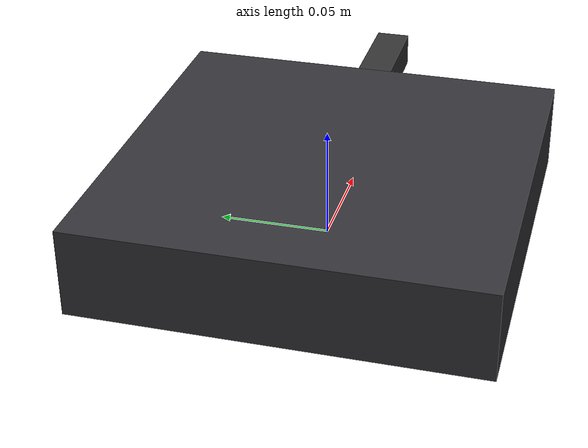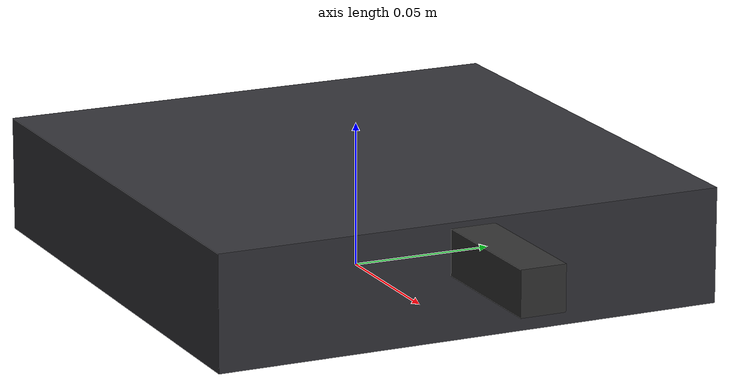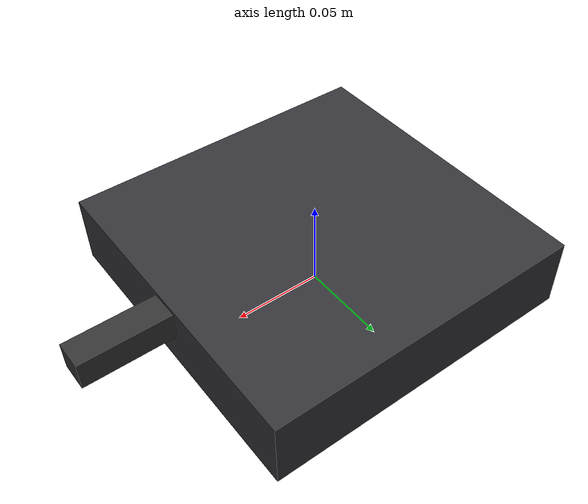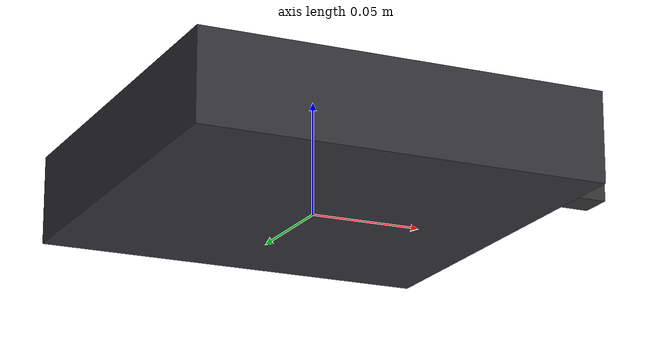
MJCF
<?xml version="1.0" encoding="utf-8"?>
<mujoco model="wafer_prober">
  <compiler angle="radian" autolimits="true"/>
  <default>
    <default class="body"><geom contype="1" conaffinity="1"/></default>
  </default>
  <worldbody>
    <body name="base">
      <geom type="box" size="0.09 0.09 0.02" pos="0 0 0.02" rgba="0.2 0.2 0.22 1" class="body"/>
      <body name="probe_arm" pos="0.05 0 0.03">
        <joint name="probe_arm_joint" type="hinge" axis="0 1 0" range="-0.6 0.2" damping="0.3" frictionloss="0.3"/>
  <geom type="box" size="0.06 0.008 0.008" pos="0.03 0 0" rgba="0.2 0.2 0.2 1" class="body"/>
      </body>
    </body>
  </worldbody>
</mujoco>
